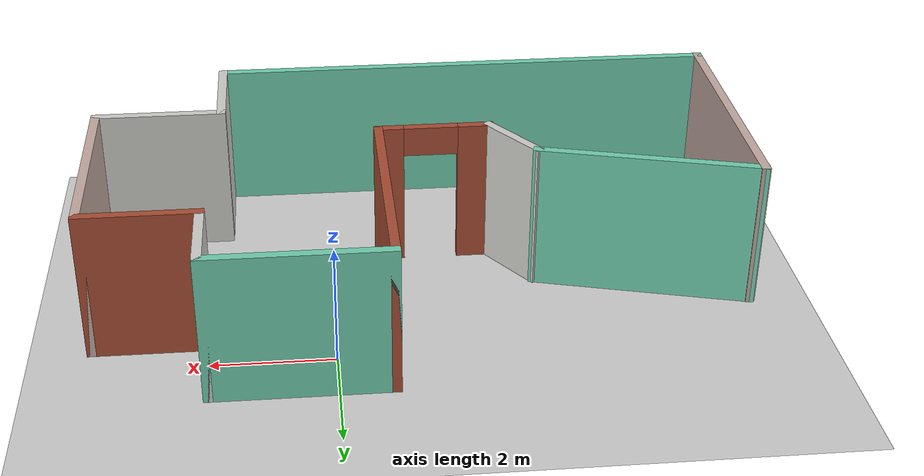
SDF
<sdf version="1.6">
 <world name="default">
  <light name="sun" type="directional">
   <pose>0 0 10 0 -0 0</pose>
   <diffuse>0.8 0.8 0.8 1</diffuse>
   <specular>0.2 0.2 0.2 1</specular>
   <attenuation>
    <range>1000</range>
    <constant>0.9</constant>
    <linear>0.01</linear>
    <quadratic>0.001</quadratic>
   </attenuation>
   <direction>-0.5 0.1 -0.9</direction>
  </light>
  <model name="ground_plane">
   <static>1</static>
   <link name="link">
    <collision name="collision">
     <geometry><plane><normal>0 0 1</normal><size>100 100</size></plane></geometry>
     <surface><friction><ode><mu>100</mu><mu2>50</mu2></ode></friction></surface>
    </collision>
    <visual name="visual">
     <cast_shadows>0</cast_shadows>
     <geometry><plane><normal>0 0 1</normal><size>100 100</size></plane></geometry>
     <material>
      <script><uri>file://media/materials/scripts/gazebo.material</uri><name>Gazebo/Grey</name></script>
     </material>
    </visual>
   </link>
  </model>
  <gravity>0 0 -9.8</gravity>
  <magnetic_field>6e-06 2.3e-05 -4.2e-05</magnetic_field>
  <atmosphere type="adiabatic"/>
  <physics name="default_physics" default="0" type="ode">
   <max_step_size>0.001</max_step_size>
   <real_time_factor>1</real_time_factor>
   <real_time_update_rate>1000</real_time_update_rate>
  </physics>
  <scene><ambient>0.4 0.4 0.4 1</ambient><background>0.7 0.7 0.7 1</background><shadows>1</shadows></scene>
  <spherical_coordinates>
   <surface_model>EARTH_WGS84</surface_model>
   <latitude_deg>0</latitude_deg>
   <longitude_deg>0</longitude_deg>
   <elevation>0</elevation>
   <heading_deg>0</heading_deg>
  </spherical_coordinates>
  <model name="building">
   <pose>-1.52658 -2.30027 0 0 -0 0</pose>
   <link name="Wall_0">
    <pose>-0.266572 -0.7 0 0 -0 0</pose>
    <visual name="Wall_0_Visual_0">
     <pose>-0.698749 0 1.25 0 -0 0</pose>
     <geometry><box><size>0.602501 0.15 2.5</size></box></geometry>
     <material>
      <script><uri>file://media/materials/scripts/gazebo.material</uri><name>Gazebo/Bricks</name></script>
      <ambient>1 1 1 1</ambient>
     </material>
     <meta><layer>0</layer></meta>
    </visual>
    <collision name="Wall_0_Collision_0">
     <geometry><box><size>0.602501 0.15 2.5</size></box></geometry>
     <pose>-0.698749 0 1.25 0 -0 0</pose>
    </collision>
    <visual name="Wall_0_Visual_1">
     <pose>0.751251 0 1.25 0 -0 0</pose>
     <geometry><box><size>0.497499 0.15 2.5</size></box></geometry>
     <material>
      <script><uri>file://media/materials/scripts/gazebo.material</uri><name>Gazebo/Bricks</name></script>
      <ambient>1 1 1 1</ambient>
     </material>
     <meta><layer>0</layer></meta>
    </visual>
    <collision name="Wall_0_Collision_1">
     <geometry><box><size>0.497499 0.15 2.5</size></box></geometry>
     <pose>0.751251 0 1.25 0 -0 0</pose>
    </collision>
    <visual name="Wall_0_Visual_2">
     <pose>0.052501 0 2.25 0 -0 0</pose>
     <geometry><box><size>0.9 0.15 0.5</size></box></geometry>
     <material>
      <script><uri>file://media/materials/scripts/gazebo.material</uri><name>Gazebo/Bricks</name></script>
      <ambient>1 1 1 1</ambient>
     </material>
     <meta><layer>0</layer></meta>
    </visual>
    <collision name="Wall_0_Collision_2">
     <geometry><box><size>0.9 0.15 0.5</size></box></geometry>
     <pose>0.052501 0 2.25 0 -0 0</pose>
    </collision>
   </link>
   <link name="Wall_1">
    <collision name="Wall_1_Collision">
     <geometry><box><size>4 0.15 2.5</size></box></geometry>
     <pose>0 0 1.25 0 -0 0</pose>
    </collision>
    <visual name="Wall_1_Visual">
     <pose>0 0 1.25 0 -0 0</pose>
     <geometry><box><size>4 0.15 2.5</size></box></geometry>
     <material>
      <script><uri>file://media/materials/scripts/gazebo.material</uri><name>Gazebo/Bricks</name></script>
      <ambient>0.760784 0.662745 0.627451 1</ambient>
     </material>
     <meta><layer>0</layer></meta>
    </visual>
    <pose>0.658428 1.225 0 0 -0 1.5708</pose>
   </link>
   <link name="Wall_10">
    <collision name="Wall_10_Collision">
     <geometry><box><size>3.75 0.15 2.5</size></box></geometry>
     <pose>0 0 1.25 0 -0 0</pose>
    </collision>
    <visual name="Wall_10_Visual">
     <pose>0 0 1.25 0 -0 0</pose>
     <geometry><box><size>3.75 0.15 2.5</size></box></geometry>
     <material>
      <script><uri>file://media/materials/scripts/gazebo.material</uri><name>Gazebo/Grey</name></script>
      <ambient>0.435294 0.796078 0.67451 1</ambient>
     </material>
     <meta><layer>0</layer></meta>
    </visual>
    <pose>-3.60291 0.734126 0 0 0 -0.261799</pose>
   </link>
   <link name="Wall_11">
    <collision name="Wall_11_Collision">
     <geometry><box><size>1.32898 0.15 2.5</size></box></geometry>
     <pose>0 0 1.25 0 -0 0</pose>
    </collision>
    <visual name="Wall_11_Visual">
     <pose>0 0 1.25 0 -0 0</pose>
     <geometry><box><size>1.32898 0.15 2.5</size></box></geometry>
     <material>
      <script><uri>file://media/materials/scripts/gazebo.material</uri><name>Gazebo/CeilingTiled</name></script>
      <ambient>1 1 1 1</ambient>
     </material>
     <meta><layer>0</layer></meta>
    </visual>
    <pose>-1.52791 -0.215874 0 0 0 -0.96362</pose>
   </link>
   <link name="Wall_2">
    <collision name="Wall_2_Collision">
     <geometry><box><size>3 0.15 2.5</size></box></geometry>
     <pose>0 0 1.25 0 -0 0</pose>
    </collision>
    <visual name="Wall_2_Visual">
     <pose>0 0 1.25 0 -0 0</pose>
     <geometry><box><size>3 0.15 2.5</size></box></geometry>
     <material>
      <script><uri>file://media/materials/scripts/gazebo.material</uri><name>Gazebo/Grey</name></script>
      <ambient>0.435294 0.796078 0.67451 1</ambient>
     </material>
     <meta><layer>0</layer></meta>
    </visual>
    <pose>2.08343 3.15 0 0 -0 0</pose>
   </link>
   <link name="Wall_3">
    <collision name="Wall_3_Collision">
     <geometry><box><size>1.5 0.15 2.5</size></box></geometry>
     <pose>0 0 1.25 0 -0 0</pose>
    </collision>
    <visual name="Wall_3_Visual">
     <pose>0 0 1.25 0 -0 0</pose>
     <geometry><box><size>1.5 0.15 2.5</size></box></geometry>
     <material>
      <script><uri>file://media/materials/scripts/gazebo.material</uri><name>Gazebo/CeilingTiled</name></script>
      <ambient>1 1 1 1</ambient>
     </material>
     <meta><layer>0</layer></meta>
    </visual>
    <pose>3.50843 2.475 0 0 0 -1.5708</pose>
   </link>
   <link name="Wall_4">
    <collision name="Wall_4_Collision">
     <geometry><box><size>2 0.15 2.5</size></box></geometry>
     <pose>0 0 1.25 0 -0 0</pose>
    </collision>
    <visual name="Wall_4_Visual">
     <pose>0 0 1.25 0 -0 0</pose>
     <geometry><box><size>2 0.15 2.5</size></box></geometry>
     <material>
      <script><uri>file://media/materials/scripts/gazebo.material</uri><name>Gazebo/Bricks</name></script>
      <ambient>1 1 1 1</ambient>
     </material>
     <meta><layer>0</layer></meta>
    </visual>
    <pose>4.43343 1.8 0 0 -0 0</pose>
   </link>
   <link name="Wall_5">
    <collision name="Wall_5_Collision">
     <geometry><box><size>3.5 0.15 2.5</size></box></geometry>
     <pose>0 0 1.25 0 -0 0</pose>
    </collision>
    <visual name="Wall_5_Visual">
     <pose>0 0 1.25 0 -0 0</pose>
     <geometry><box><size>3.5 0.15 2.5</size></box></geometry>
     <material>
      <script><uri>file://media/materials/scripts/gazebo.material</uri><name>Gazebo/Grey</name></script>
      <ambient>0.760784 0.662745 0.627451 1</ambient>
     </material>
     <meta><layer>0</layer></meta>
    </visual>
    <pose>5.35843 0.125 0 0 0 -1.5708</pose>
   </link>
   <link name="Wall_6">
    <collision name="Wall_6_Collision">
     <geometry><box><size>2.25 0.15 2.5</size></box></geometry>
     <pose>0 0 1.25 0 -0 0</pose>
    </collision>
    <visual name="Wall_6_Visual">
     <pose>0 0 1.25 0 -0 0</pose>
     <geometry><box><size>2.25 0.15 2.5</size></box></geometry>
     <material>
      <script><uri>file://media/materials/scripts/gazebo.material</uri><name>Gazebo/CeilingTiled</name></script>
      <ambient>1 1 1 1</ambient>
     </material>
     <meta><layer>0</layer></meta>
    </visual>
    <pose>4.30843 -1.55 0 0 -0 3.14159</pose>
   </link>
   <link name="Wall_7">
    <collision name="Wall_7_Collision">
     <geometry><box><size>1.75 0.15 2.5</size></box></geometry>
     <pose>0 0 1.25 0 -0 0</pose>
    </collision>
    <visual name="Wall_7_Visual">
     <pose>0 0 1.25 0 -0 0</pose>
     <geometry><box><size>1.75 0.15 2.5</size></box></geometry>
     <material>
      <script><uri>file://media/materials/scripts/gazebo.material</uri><name>Gazebo/CeilingTiled</name></script>
      <ambient>1 1 1 1</ambient>
     </material>
     <meta><layer>0</layer></meta>
    </visual>
    <pose>3.25843 -2.35 0 0 0 -1.5708</pose>
   </link>
   <link name="Wall_8">
    <collision name="Wall_8_Collision">
     <geometry><box><size>8.75 0.15 2.5</size></box></geometry>
     <pose>0 0 1.25 0 -0 0</pose>
    </collision>
    <visual name="Wall_8_Visual">
     <pose>0 0 1.25 0 -0 0</pose>
     <geometry><box><size>8.75 0.15 2.5</size></box></geometry>
     <material>
      <script><uri>file://media/materials/scripts/gazebo.material</uri><name>Gazebo/Grey</name></script>
      <ambient>0.435294 0.796078 0.67451 1</ambient>
     </material>
     <meta><layer>0</layer></meta>
    </visual>
    <pose>-1.04157 -3.15 0 0 -0 3.14159</pose>
   </link>
   <link name="Wall_9">
    <collision name="Wall_9_Collision">
     <geometry><box><size>4.5 0.15 2.5</size></box></geometry>
     <pose>0 0 1.25 0 -0 0</pose>
    </collision>
    <visual name="Wall_9_Visual">
     <pose>0 0 1.25 0 -0 0</pose>
     <geometry><box><size>4.5 0.15 2.5</size></box></geometry>
     <material>
      <script><uri>file://media/materials/scripts/gazebo.material</uri><name>Gazebo/Grey</name></script>
      <ambient>0.760784 0.662745 0.627451 1</ambient>
     </material>
     <meta><layer>0</layer></meta>
    </visual>
    <pose>-5.34157 -0.975 0 0 -0 1.5708</pose>
   </link>
   <static>1</static>
  </model>
 </world>
</sdf>
